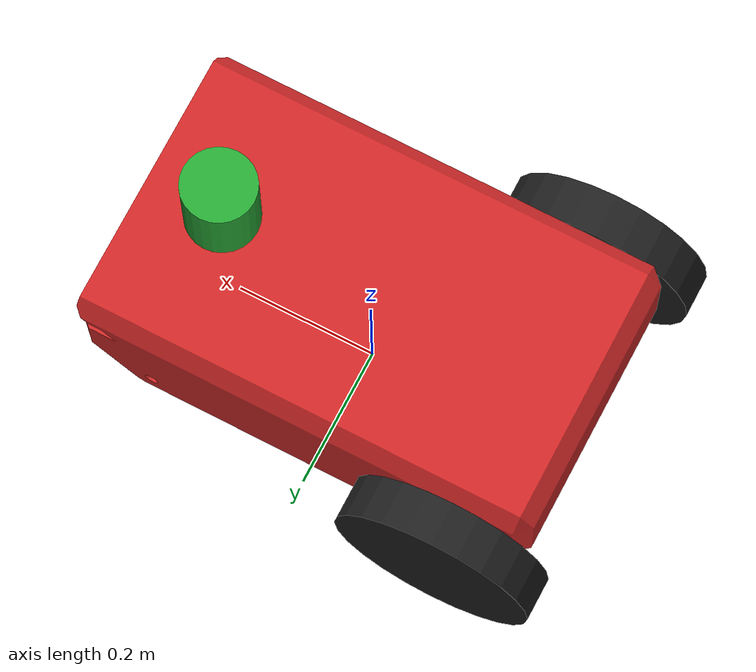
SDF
<sdf version='1.7'>
  <model name='twr'>
    <link name='base_footprint'>
      <inertial>
        <pose>0.043963 0 0.170261 0 -0 0</pose>
        <mass>50.164</mass>
        <inertia>
          <ixx>0.756777</ixx>
          <ixy>3.19064e-16</ixy>
          <ixz>0.171367</ixz>
          <iyy>2.26467</iyy>
          <iyz>1.17097e-31</iyz>
          <izz>2.55546</izz>
        </inertia>
      </inertial>
      <collision name='base_footprint_fixed_joint_lump__base_link_collision'>
        <pose>0 0 0.19 0 -0 0</pose>
        <geometry>
          <box>
            <size>0.7 0.39 0.2</size>
          </box>
        </geometry>
        <surface>
          <contact>
            <ode/>
          </contact>
          <friction>
            <ode/>
          </friction>
        </surface>
      </collision>
      <collision name='base_footprint_fixed_joint_lump__front_caster_collision_1'>
        <pose>0.217 0 0.09 0 -0 0</pose>
        <geometry>
          <sphere>
            <radius>0.09</radius>
          </sphere>
        </geometry>
        <surface>
          <contact>
            <ode/>
          </contact>
          <friction>
            <ode/>
          </friction>
        </surface>
      </collision>
      <collision name='base_footprint_fixed_joint_lump__lidar_link_collision_2'>
        <pose>0.215 0 0.32 0 -0 0</pose>
        <geometry>
          <cylinder>
            <length>0.18</length>
            <radius>0.0508</radius>
          </cylinder>
        </geometry>
        <surface>
          <contact>
            <ode/>
          </contact>
          <friction>
            <ode/>
          </friction>
        </surface>
      </collision>
      <visual name='base_footprint_fixed_joint_lump__base_link_visual'>
        <pose>0 0 0.19 0 -0 0</pose>
        <geometry>
          <mesh>
            <scale>1 1 1</scale>
            <uri>model://bots/meshes/twr/robot_base.stl</uri>
          </mesh>
        </geometry>
        <material>
          <script>
            <name>Gazebo/Red</name>
            <uri>file://media/materials/scripts/gazebo.material</uri>
          </script>
        </material>
      </visual>
      <visual name='base_footprint_fixed_joint_lump__front_caster_visual_1'>
        <pose>0.217 0 0.09 0 -0 0</pose>
        <geometry>
          <sphere>
            <radius>0.09</radius>
          </sphere>
        </geometry>
        <material>
          <script>
            <name>Gazebo/White</name>
            <uri>file://media/materials/scripts/gazebo.material</uri>
          </script>
        </material>
      </visual>
      <visual name='base_footprint_fixed_joint_lump__lidar_link_visual_2'>
        <pose>0.215 0 0.32 0 -0 0</pose>
        <geometry>
          <cylinder>
            <length>0.18</length>
            <radius>0.0508</radius>
          </cylinder>
        </geometry>
        <material>
          <script>
            <name>Gazebo/Green</name>
            <uri>file://media/materials/scripts/gazebo.material</uri>
          </script>
        </material>
      </visual>
    </link>
    <joint name='drivewhl_l_joint' type='revolute'>
      <pose relative_to='base_footprint'>-0.221 0.23 0.14 0 -0 0</pose>
      <parent>base_footprint</parent>
      <child>drivewhl_l_link</child>
      <axis>
        <xyz>0 1 0</xyz>
        <limit>
          <lower>-3.14159</lower>
          <upper>3.14159</upper>
          <effort>30</effort>
          <velocity>5</velocity>
        </limit>
        <dynamics>
          <spring_reference>0</spring_reference>
          <spring_stiffness>0</spring_stiffness>
        </dynamics>
      </axis>
    </joint>
    <link name='drivewhl_l_link'>
      <pose relative_to='drivewhl_l_joint'>0 0 0 0 -0 0</pose>
      <inertial>
        <pose>0 0 0 1.5708 -0 0</pose>
        <mass>110.5</mass>
        <inertia>
          <ixx>0.5746</ixx>
          <ixy>0</ixy>
          <ixz>0</ixz>
          <iyy>0.5746</iyy>
          <iyz>0</iyz>
          <izz>1.0829</izz>
        </inertia>
      </inertial>
      <collision name='drivewhl_l_link_collision'>
        <pose>0 0 0 1.5708 -0 0</pose>
        <geometry>
          <cylinder>
            <length>0.06</length>
            <radius>0.14</radius>
          </cylinder>
        </geometry>
        <surface>
          <contact>
            <ode/>
          </contact>
          <friction>
            <ode/>
          </friction>
        </surface>
      </collision>
      <visual name='drivewhl_l_link_visual'>
        <pose>0 0 0 1.5708 -0 0</pose>
        <geometry>
          <cylinder>
            <length>0.06</length>
            <radius>0.14</radius>
          </cylinder>
        </geometry>
        <material>
          <script>
            <name>Gazebo/FlatBlack</name>
            <uri>file://media/materials/scripts/gazebo.material</uri>
          </script>
        </material>
      </visual>
    </link>
    <joint name='drivewhl_r_joint' type='revolute'>
      <pose relative_to='base_footprint'>-0.221 -0.23 0.14 0 -0 0</pose>
      <parent>base_footprint</parent>
      <child>drivewhl_r_link</child>
      <axis>
        <xyz>0 1 0</xyz>
        <limit>
          <lower>-3.14159</lower>
          <upper>3.14159</upper>
          <effort>30</effort>
          <velocity>5</velocity>
        </limit>
        <dynamics>
          <spring_reference>0</spring_reference>
          <spring_stiffness>0</spring_stiffness>
        </dynamics>
      </axis>
    </joint>
    <link name='drivewhl_r_link'>
      <pose relative_to='drivewhl_r_joint'>0 0 0 0 -0 0</pose>
      <inertial>
        <pose>0 0 0 1.5708 -0 0</pose>
        <mass>110.5</mass>
        <inertia>
          <ixx>0.5746</ixx>
          <ixy>0</ixy>
          <ixz>0</ixz>
          <iyy>0.5746</iyy>
          <iyz>0</iyz>
          <izz>1.0829</izz>
        </inertia>
      </inertial>
      <collision name='drivewhl_r_link_collision'>
        <pose>0 0 0 1.5708 -0 0</pose>
        <geometry>
          <cylinder>
            <length>0.06</length>
            <radius>0.14</radius>
          </cylinder>
        </geometry>
        <surface>
          <contact>
            <ode/>
          </contact>
          <friction>
            <ode/>
          </friction>
        </surface>
      </collision>
      <visual name='drivewhl_r_link_visual'>
        <pose>0 0 0 1.5708 -0 0</pose>
        <geometry>
          <cylinder>
            <length>0.06</length>
            <radius>0.14</radius>
          </cylinder>
        </geometry>
        <material>
          <script>
            <name>Gazebo/FlatBlack</name>
            <uri>file://media/materials/scripts/gazebo.material</uri>
          </script>
        </material>
      </visual>
    </link>
  </model>
</sdf>
